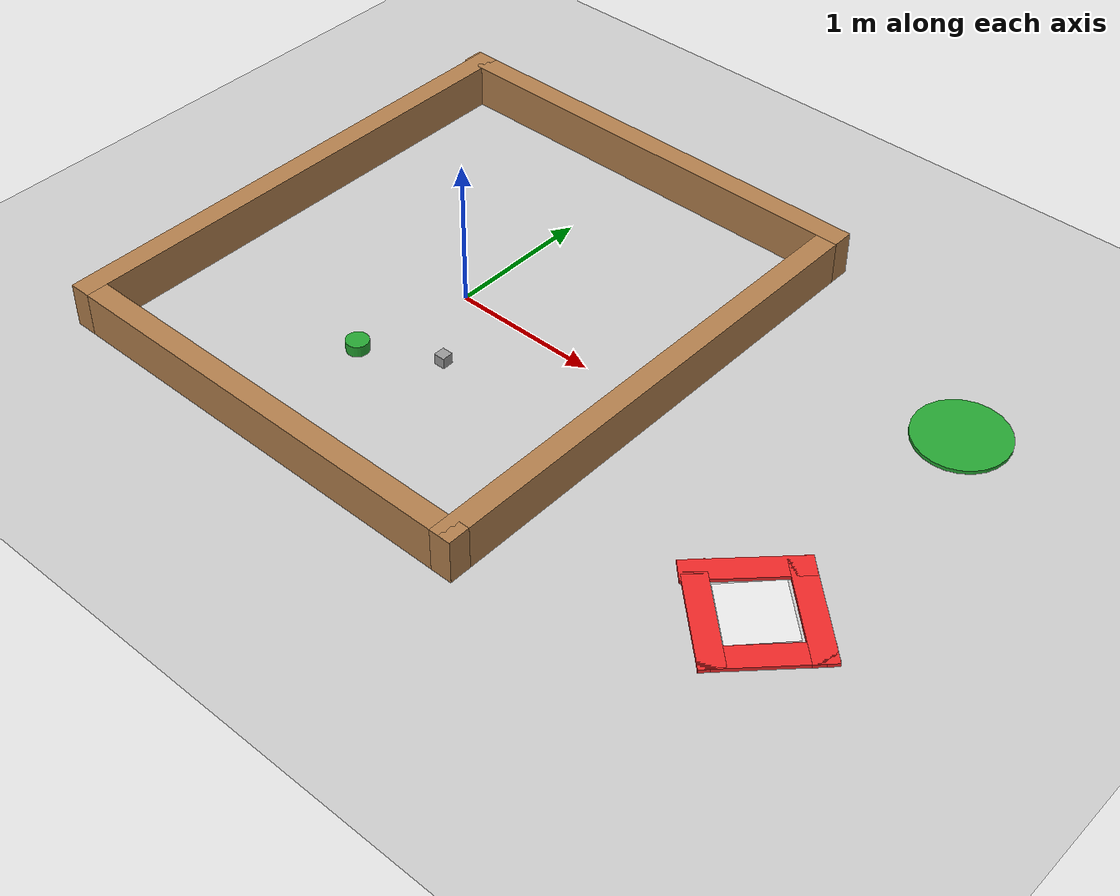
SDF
<sdf version="1.7">
 <world name="default">
  <light name="sun" type="directional">
   <pose>0 0 10 0 -0 0</pose>
   <diffuse>0.8 0.8 0.8 1</diffuse>
   <specular>0.2 0.2 0.2 1</specular>
   <attenuation>
    <range>1000</range>
    <constant>0.9</constant>
    <linear>0.01</linear>
    <quadratic>0.001</quadratic>
   </attenuation>
   <direction>-0.5 0.1 -0.9</direction>
   <spot><inner_angle>0</inner_angle><outer_angle>0</outer_angle><falloff>0</falloff></spot>
  </light>
  <model name="ground_plane">
   <static>1</static>
   <link name="link">
    <collision name="collision">
     <geometry><plane><normal>0 0 1</normal><size>100 100</size></plane></geometry>
     <surface>
      <contact><collide_bitmask>65535</collide_bitmask></contact>
      <friction><ode><mu>100</mu><mu2>50</mu2></ode></friction>
     </surface>
    </collision>
    <visual name="visual">
     <cast_shadows>0</cast_shadows>
     <geometry><plane><normal>0 0 1</normal><size>100 100</size></plane></geometry>
     <material>
      <script><uri>file://media/materials/scripts/gazebo.material</uri><name>Gazebo/Grey</name></script>
     </material>
    </visual>
   </link>
  </model>
  <gravity>0 0 -9.8</gravity>
  <magnetic_field>6e-06 2.3e-05 -4.2e-05</magnetic_field>
  <atmosphere type="adiabatic"/>
  <physics type="ode">
   <max_step_size>0.001</max_step_size>
   <real_time_factor>1</real_time_factor>
   <real_time_update_rate>1000</real_time_update_rate>
  </physics>
  <scene><ambient>0.4 0.4 0.4 1</ambient><background>0.7 0.7 0.7 1</background><shadows>1</shadows></scene>
  <spherical_coordinates>
   <surface_model>EARTH_WGS84</surface_model>
   <latitude_deg>0</latitude_deg>
   <longitude_deg>0</longitude_deg>
   <elevation>0</elevation>
   <heading_deg>0</heading_deg>
  </spherical_coordinates>
  <model name="Arena">
   <pose>0.000232 0.01644 0 0 -0 0</pose>
   <link name="Wall_2">
    <collision name="Wall_2_Collision">
     <geometry><box><size>3.23208 0.15 0.304</size></box></geometry>
     <pose>0 0 0.152 0 -0 0</pose>
    </collision>
    <visual name="Wall_2_Visual">
     <pose>0 0 0.152 0 -0 0</pose>
     <geometry><box><size>3.23208 0.15 0.304</size></box></geometry>
     <material>
      <script><uri>file://media/materials/scripts/gazebo.material</uri><name>Gazebo/Wood</name></script>
      <ambient>1 1 1 1</ambient>
     </material>
     <meta><layer>0</layer></meta>
    </visual>
    <pose>0 1.735 0 0 -0 0</pose>
   </link>
   <link name="Wall_3">
    <collision name="Wall_3_Collision">
     <geometry><box><size>3.62021 0.15 0.304</size></box></geometry>
     <pose>0 0 0.152 0 -0 0</pose>
    </collision>
    <visual name="Wall_3_Visual">
     <pose>0 0 0.152 0 -0 0</pose>
     <geometry><box><size>3.62021 0.15 0.304</size></box></geometry>
     <material>
      <script><uri>file://media/materials/scripts/gazebo.material</uri><name>Gazebo/Wood</name></script>
      <ambient>1 1 1 1</ambient>
     </material>
     <meta><layer>0</layer></meta>
    </visual>
    <pose>1.541 0 0 0 -0 -1.5708</pose>
   </link>
   <link name="Wall_4">
    <collision name="Wall_4_Collision">
     <geometry><box><size>3.22 0.15 0.304</size></box></geometry>
     <pose>0 0 0.152 0 -0 0</pose>
    </collision>
    <visual name="Wall_4_Visual">
     <pose>0 0 0.152 0 -0 0</pose>
     <geometry><box><size>3.22 0.15 0.304</size></box></geometry>
     <material>
      <script><uri>file://media/materials/scripts/gazebo.material</uri><name>Gazebo/Wood</name></script>
      <ambient>1 1 1 1</ambient>
     </material>
     <meta><layer>0</layer></meta>
    </visual>
    <pose>0.006 -1.735 0 0 -0 3.14159</pose>
   </link>
   <link name="Wall_5">
    <collision name="Wall_5_Collision">
     <geometry><box><size>3.62001 0.15 0.304</size></box></geometry>
     <pose>0 0 0.152 0 -0 0</pose>
    </collision>
    <visual name="Wall_5_Visual">
     <pose>0 0 0.152 0 -0 0</pose>
     <geometry><box><size>3.62001 0.15 0.304</size></box></geometry>
     <material>
      <script><uri>file://media/materials/scripts/gazebo.material</uri><name>Gazebo/Wood</name></script>
      <ambient>1 1 1 1</ambient>
     </material>
     <meta><layer>0</layer></meta>
    </visual>
    <pose>-1.529 0 0 0 -0 1.5708</pose>
   </link>
   <static>1</static>
  </model>
  <model name="Drop_zone">
   <pose>2.52651 -0.638522 0 0 -0 0</pose>
   <link name="Wall_0">
    <collision name="Wall_0_Collision">
     <geometry><box><size>0.74892 0.15 0.025</size></box></geometry>
     <pose>0 0 0.0125 0 -0 0</pose>
    </collision>
    <visual name="Wall_0_Visual">
     <pose>0 0 0.0125 0 -0 0</pose>
     <geometry><box><size>0.74892 0.15 0.025</size></box></geometry>
     <material>
      <script><uri>file://media/materials/scripts/gazebo.material</uri><name>Gazebo/Grey</name></script>
      <ambient>0.937255 0.160784 0.160784 1</ambient>
     </material>
     <meta><layer>0</layer></meta>
    </visual>
    <pose>0.20446 -0.023502 0 0 -0 0.784218</pose>
   </link>
   <link name="Wall_1">
    <collision name="Wall_1_Collision">
     <geometry><box><size>0.756355 0.15 0.025</size></box></geometry>
     <pose>0 0 0.0125 0 -0 0</pose>
    </collision>
    <visual name="Wall_1_Visual">
     <pose>0 0 0.0125 0 -0 0</pose>
     <geometry><box><size>0.756355 0.15 0.025</size></box></geometry>
     <material>
      <script><uri>file://media/materials/scripts/gazebo.material</uri><name>Gazebo/Grey</name></script>
      <ambient>0.937255 0.160784 0.160784 1</ambient>
     </material>
     <meta><layer>0</layer></meta>
    </visual>
    <pose>0.63646 -0.020502 0 0 -0 -0.758567</pose>
   </link>
   <link name="Wall_2">
    <collision name="Wall_2_Collision">
     <geometry><box><size>0.736724 0.15 0.025</size></box></geometry>
     <pose>0 0 0.0125 0 -0 0</pose>
    </collision>
    <visual name="Wall_2_Visual">
     <pose>0 0 0.0125 0 -0 0</pose>
     <geometry><box><size>0.736724 0.15 0.025</size></box></geometry>
     <material>
      <script><uri>file://media/materials/scripts/gazebo.material</uri><name>Gazebo/Grey</name></script>
      <ambient>0.937255 0.160784 0.160784 1</ambient>
     </material>
     <meta><layer>0</layer></meta>
    </visual>
    <pose>0.65046 -0.438002 0 0 -0 -2.34897</pose>
   </link>
   <link name="Wall_3">
    <collision name="Wall_3_Collision">
     <geometry><box><size>0.760813 0.15 0.025</size></box></geometry>
     <pose>0 0 0.0125 0 -0 0</pose>
    </collision>
    <visual name="Wall_3_Visual">
     <pose>0 0 0.0125 0 -0 0</pose>
     <geometry><box><size>0.760813 0.15 0.025</size></box></geometry>
     <material>
      <script><uri>file://media/materials/scripts/gazebo.material</uri><name>Gazebo/Grey</name></script>
      <ambient>0.937255 0.160784 0.160784 1</ambient>
     </material>
     <meta><layer>0</layer></meta>
    </visual>
    <pose>0.22146 -0.438002 0 0 -0 2.38859</pose>
   </link>
   <static>1</static>
  </model>
  <model name="Landing_pad">
   <link name="link_0">
    <inertial>
     <mass>1</mass>
     <inertia><ixx>0.145833</ixx><ixy>0</ixy><ixz>0</ixz><iyy>0.145833</iyy><iyz>0</iyz><izz>0.125</izz></inertia>
    </inertial>
    <visual name="visual">
     <geometry><cylinder><radius>0.305</radius><length>0.025</length></cylinder></geometry>
     <material>
      <lighting>1</lighting>
      <script><uri>file://media/materials/scripts/gazebo.material</uri><name>Gazebo/Green</name></script>
      <shader type="pixel"><normal_map>__default__</normal_map></shader>
      <ambient>0 1 0 1</ambient>
      <diffuse>0 1 0 1</diffuse>
      <specular>0.1 0.1 0.1 1</specular>
      <emissive>0 0 0 1</emissive>
     </material>
    </visual>
    <collision name="collision">
     <geometry><cylinder><radius>0.305</radius><length>0.025</length></cylinder></geometry>
     <surface>
      <friction>
       <ode><mu>1</mu><mu2>1</mu2><fdir1>0 0 0</fdir1><slip1>0</slip1><slip2>0</slip2></ode>
       <torsional>
        <coefficient>1</coefficient>
        <patch_radius>0</patch_radius>
        <surface_radius>0</surface_radius>
        <use_patch_radius>1</use_patch_radius>
        <ode><slip>0</slip></ode>
       </torsional>
      </friction>
      <bounce><restitution_coefficient>0</restitution_coefficient><threshold>1e+06</threshold></bounce>
      <contact>
       <collide_without_contact>0</collide_without_contact>
       <collide_without_contact_bitmask>1</collide_without_contact_bitmask>
       <collide_bitmask>1</collide_bitmask>
       <ode>
        <soft_cfm>0</soft_cfm>
        <soft_erp>0.2</soft_erp>
        <kp>1e+13</kp>
        <kd>1</kd>
        <max_vel>0.01</max_vel>
        <min_depth>0</min_depth>
       </ode>
       <bullet>
        <split_impulse>1</split_impulse>
        <split_impulse_penetration_threshold>-0.01</split_impulse_penetration_threshold>
        <soft_cfm>0</soft_cfm>
        <soft_erp>0.2</soft_erp>
        <kp>1e+13</kp>
        <kd>1</kd>
       </bullet>
      </contact>
     </surface>
    </collision>
   </link>
   <static>0</static>
   <pose>3.01479 1.00089 0.012227 0.00122 -0.00037 -0.002829</pose>
  </model>
  <model name="Package1">
   <link name="link_0">
    <inertial>
     <mass>1</mass>
     <inertia>
      <ixx>0.166667</ixx>
      <ixy>0</ixy>
      <ixz>0</ixz>
      <iyy>0.166667</iyy>
      <iyz>0</iyz>
      <izz>0.166667</izz>
     </inertia>
    </inertial>
    <visual name="visual">
     <geometry><box><size>0.0762 0.0762 0.0762</size></box></geometry>
     <material>
      <lighting>1</lighting>
      <script><uri>file://media/materials/scripts/gazebo.material</uri><name>Gazebo/Grey</name></script>
      <shader type="pixel"><normal_map>__default__</normal_map></shader>
      <ambient>0.3 0.3 0.3 1</ambient>
      <diffuse>0.7 0.7 0.7 1</diffuse>
      <specular>0.01 0.01 0.01 1</specular>
      <emissive>0 0 0 1</emissive>
     </material>
    </visual>
    <collision name="collision">
     <geometry><box><size>0.0762 0.0762 0.0762</size></box></geometry>
     <surface>
      <friction>
       <ode><mu>1</mu><mu2>1</mu2><fdir1>0 0 0</fdir1><slip1>0</slip1><slip2>0</slip2></ode>
       <torsional>
        <coefficient>1</coefficient>
        <patch_radius>0</patch_radius>
        <surface_radius>0</surface_radius>
        <use_patch_radius>1</use_patch_radius>
        <ode><slip>0</slip></ode>
       </torsional>
      </friction>
      <bounce><restitution_coefficient>0</restitution_coefficient><threshold>1e+06</threshold></bounce>
      <contact>
       <collide_without_contact>0</collide_without_contact>
       <collide_without_contact_bitmask>1</collide_without_contact_bitmask>
       <collide_bitmask>1</collide_bitmask>
       <ode>
        <soft_cfm>0</soft_cfm>
        <soft_erp>0.2</soft_erp>
        <kp>1e+13</kp>
        <kd>1</kd>
        <max_vel>0.01</max_vel>
        <min_depth>0</min_depth>
       </ode>
       <bullet>
        <split_impulse>1</split_impulse>
        <split_impulse_penetration_threshold>-0.01</split_impulse_penetration_threshold>
        <soft_cfm>0</soft_cfm>
        <soft_erp>0.2</soft_erp>
        <kp>1e+13</kp>
        <kd>1</kd>
       </bullet>
      </contact>
     </surface>
    </collision>
   </link>
   <static>0</static>
   <pose>0.334419 -0.543897 0.0381 -4e-06 2e-06 -1.2e-05</pose>
  </model>
  <model name="Dropzone_base">
   <link name="link_0">
    <inertial>
     <mass>0.0235743</mass>
     <inertia>
      <ixx>0.00039997</ixx>
      <ixy>0</ixy>
      <ixz>0</ixz>
      <iyy>0.00039086</iyy>
      <iyz>0</iyz>
      <izz>0.00072805</izz>
     </inertia>
    </inertial>
    <pose>0 0 0 -0 -0 -0.755838</pose>
    <visual name="visual">
     <geometry><box><size>0.427763 0.411686 0.01</size></box></geometry>
     <material>
      <lighting>1</lighting>
      <script><uri>file://media/materials/scripts/gazebo.material</uri><name>Gazebo/White</name></script>
      <shader type="pixel"><normal_map>__default__</normal_map></shader>
      <ambient>1 1 1 1</ambient>
      <diffuse>1 1 1 1</diffuse>
      <specular>1 1 1 1</specular>
      <emissive>1 1 1 1</emissive>
     </material>
    </visual>
    <collision name="collision">
     <geometry><box><size>0.427763 0.411686 0.01</size></box></geometry>
     <surface>
      <friction>
       <ode><mu>1</mu><mu2>1</mu2><fdir1>0 0 0</fdir1><slip1>0</slip1><slip2>0</slip2></ode>
       <torsional>
        <coefficient>1</coefficient>
        <patch_radius>0</patch_radius>
        <surface_radius>0</surface_radius>
        <use_patch_radius>1</use_patch_radius>
        <ode><slip>0</slip></ode>
       </torsional>
      </friction>
      <bounce><restitution_coefficient>0</restitution_coefficient><threshold>1e+06</threshold></bounce>
      <contact>
       <collide_without_contact>0</collide_without_contact>
       <collide_without_contact_bitmask>1</collide_without_contact_bitmask>
       <collide_bitmask>1</collide_bitmask>
       <ode>
        <soft_cfm>0</soft_cfm>
        <soft_erp>0.2</soft_erp>
        <kp>1e+13</kp>
        <kd>1</kd>
        <max_vel>0.01</max_vel>
        <min_depth>0</min_depth>
       </ode>
       <bullet>
        <split_impulse>1</split_impulse>
        <split_impulse_penetration_threshold>-0.01</split_impulse_penetration_threshold>
        <soft_cfm>0</soft_cfm>
        <soft_erp>0.2</soft_erp>
        <kp>1e+13</kp>
        <kd>1</kd>
       </bullet>
      </contact>
     </surface>
    </collision>
   </link>
   <static>0</static>
   <pose>2.94979 -0.871264 0.004991 -3.1e-05 3e-05 0.001566</pose>
  </model>
  <model name="Package2">
   <link name="link_1">
    <inertial>
     <mass>1</mass>
     <inertia><ixx>0.145833</ixx><ixy>0</ixy><ixz>0</ixz><iyy>0.145833</iyy><iyz>0</iyz><izz>0.125</izz></inertia>
    </inertial>
    <visual name="visual">
     <geometry><cylinder><radius>0.0762</radius><length>0.0762</length></cylinder></geometry>
     <material>
      <lighting>1</lighting>
      <script><uri>file://media/materials/scripts/gazebo.material</uri><name>Gazebo/Green</name></script>
      <shader type="pixel"><normal_map>__default__</normal_map></shader>
      <ambient>0 0 1 1</ambient>
      <diffuse>0 0 1 1</diffuse>
      <specular>0 0 1 1</specular>
      <emissive>0 0 1 1</emissive>
     </material>
    </visual>
    <collision name="collision">
     <geometry><cylinder><radius>0.0762</radius><length>0.0762</length></cylinder></geometry>
     <surface>
      <friction>
       <ode><mu>1</mu><mu2>1</mu2><fdir1>0 0 0</fdir1><slip1>0</slip1><slip2>0</slip2></ode>
       <torsional>
        <coefficient>1</coefficient>
        <patch_radius>0</patch_radius>
        <surface_radius>0</surface_radius>
        <use_patch_radius>1</use_patch_radius>
        <ode><slip>0</slip></ode>
       </torsional>
      </friction>
      <bounce><restitution_coefficient>0</restitution_coefficient><threshold>1e+06</threshold></bounce>
      <contact>
       <collide_without_contact>0</collide_without_contact>
       <collide_without_contact_bitmask>1</collide_without_contact_bitmask>
       <collide_bitmask>1</collide_bitmask>
       <ode>
        <soft_cfm>0</soft_cfm>
        <soft_erp>0.2</soft_erp>
        <kp>1e+13</kp>
        <kd>1</kd>
        <max_vel>0.01</max_vel>
        <min_depth>0</min_depth>
       </ode>
       <bullet>
        <split_impulse>1</split_impulse>
        <split_impulse_penetration_threshold>-0.01</split_impulse_penetration_threshold>
        <soft_cfm>0</soft_cfm>
        <soft_erp>0.2</soft_erp>
        <kp>1e+13</kp>
        <kd>1</kd>
       </bullet>
      </contact>
     </surface>
    </collision>
   </link>
   <static>0</static>
   <pose>-0.144962 -0.800638 0.0381 0 -0 0</pose>
  </model>
 </world>
</sdf>
